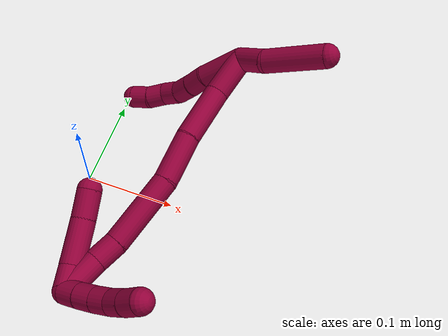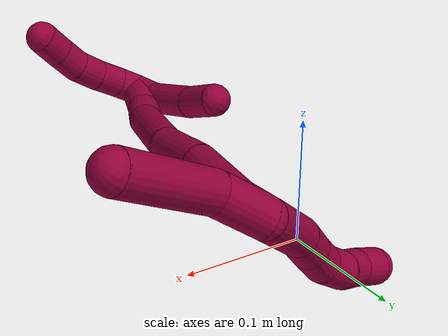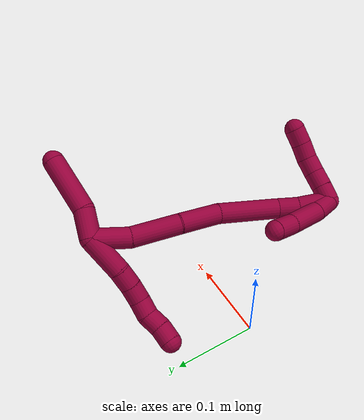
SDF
<sdf version="1.7">
 <world name="default">
  <model name="8">
   <static>0</static>
   <link name="8">
    <collision name="collision-cylinder-e_1_2_8">
     <pose>0.001947 -0.005397 -0.023139 2.91245 0.081759 0.683017</pose>
     <geometry><cylinder><radius>0.0125</radius><length>0.04768</length></cylinder></geometry>
     <surface>
      <friction><ode><mu>1.16</mu><mu2>1.16</mu2><slip1>0</slip1><slip2>0</slip2></ode></friction>
      <contact><ode><kp>1e+06</kp><kd>1</kd><max_vel>0</max_vel><min_depth>0.001</min_depth></ode></contact>
     </surface>
    </collision>
    <visual name="visual-cylinder-e_1_2_8">
     <pose>0.001947 -0.005397 -0.023139 2.91245 0.081759 0.683017</pose>
     <geometry><cylinder><radius>0.0125</radius><length>0.04768</length></cylinder></geometry>
     <material><ambient>0.584314 0 0.227451 1</ambient></material>
    </visual>
    <collision name="collision-cylinder-e_2_8_9">
     <pose>0.006574 -0.012587 -0.056457 2.96723 0.253731 1.94009</pose>
     <geometry><cylinder><radius>0.0125</radius><length>0.021354</length></cylinder></geometry>
     <surface>
      <friction><ode><mu>1.16</mu><mu2>1.16</mu2><slip1>0</slip1><slip2>0</slip2></ode></friction>
      <contact><ode><kp>1e+06</kp><kd>1</kd><max_vel>0</max_vel><min_depth>0.001</min_depth></ode></contact>
     </surface>
    </collision>
    <visual name="visual-cylinder-e_2_8_9">
     <pose>0.006574 -0.012587 -0.056457 2.96723 0.253731 1.94009</pose>
     <geometry><cylinder><radius>0.0125</radius><length>0.021354</length></cylinder></geometry>
     <material><ambient>0.584314 0 0.227451 1</ambient></material>
    </visual>
    <collision name="collision-cylinder-e_3_9_10">
     <pose>0.011852 -0.015225 -0.076754 3.05826 0.250481 2.50205</pose>
     <geometry><cylinder><radius>0.0125</radius><length>0.020961</length></cylinder></geometry>
     <surface>
      <friction><ode><mu>1.16</mu><mu2>1.16</mu2><slip1>0</slip1><slip2>0</slip2></ode></friction>
      <contact><ode><kp>1e+06</kp><kd>1</kd><max_vel>0</max_vel><min_depth>0.001</min_depth></ode></contact>
     </surface>
    </collision>
    <visual name="visual-cylinder-e_3_9_10">
     <pose>0.011852 -0.015225 -0.076754 3.05826 0.250481 2.50205</pose>
     <geometry><cylinder><radius>0.0125</radius><length>0.020961</length></cylinder></geometry>
     <material><ambient>0.584314 0 0.227451 1</ambient></material>
    </visual>
    <collision name="collision-cylinder-e_4_10_11">
     <pose>0.014164 -0.01557 -0.096857 -3.09156 -0.028587 1.0381</pose>
     <geometry><cylinder><radius>0.0125</radius><length>0.020002</length></cylinder></geometry>
     <surface>
      <friction><ode><mu>1.16</mu><mu2>1.16</mu2><slip1>0</slip1><slip2>0</slip2></ode></friction>
      <contact><ode><kp>1e+06</kp><kd>1</kd><max_vel>0</max_vel><min_depth>0.001</min_depth></ode></contact>
     </surface>
    </collision>
    <visual name="visual-cylinder-e_4_10_11">
     <pose>0.014164 -0.01557 -0.096857 -3.09156 -0.028587 1.0381</pose>
     <geometry><cylinder><radius>0.0125</radius><length>0.020002</length></cylinder></geometry>
     <material><ambient>0.584314 0 0.227451 1</ambient></material>
    </visual>
    <collision name="collision-cylinder-e_5_11_12">
     <pose>0.011834 -0.017448 -0.116338 2.89624 -0.205826 -1.39454</pose>
     <geometry><cylinder><radius>0.0125</radius><length>0.020003</length></cylinder></geometry>
     <surface>
      <friction><ode><mu>1.16</mu><mu2>1.16</mu2><slip1>0</slip1><slip2>0</slip2></ode></friction>
      <contact><ode><kp>1e+06</kp><kd>1</kd><max_vel>0</max_vel><min_depth>0.001</min_depth></ode></contact>
     </surface>
    </collision>
    <visual name="visual-cylinder-e_5_11_12">
     <pose>0.011834 -0.017448 -0.116338 2.89624 -0.205826 -1.39454</pose>
     <geometry><cylinder><radius>0.0125</radius><length>0.020003</length></cylinder></geometry>
     <material><ambient>0.584314 0 0.227451 1</ambient></material>
    </visual>
    <collision name="collision-cylinder-e_6_12_6">
     <pose>0.007013 -0.019822 -0.135441 -3.1411 -0.281451 3.13814</pose>
     <geometry><cylinder><radius>0.0125</radius><length>0.02</length></cylinder></geometry>
     <surface>
      <friction><ode><mu>1.16</mu><mu2>1.16</mu2><slip1>0</slip1><slip2>0</slip2></ode></friction>
      <contact><ode><kp>1e+06</kp><kd>1</kd><max_vel>0</max_vel><min_depth>0.001</min_depth></ode></contact>
     </surface>
    </collision>
    <visual name="visual-cylinder-e_6_12_6">
     <pose>0.007013 -0.019822 -0.135441 -3.1411 -0.281451 3.13814</pose>
     <geometry><cylinder><radius>0.0125</radius><length>0.02</length></cylinder></geometry>
     <material><ambient>0.584314 0 0.227451 1</ambient></material>
    </visual>
    <collision name="collision-cylinder-e_1_2_13">
     <pose>-0.00025 -0.005312 0.016267 0.315655 -0.014602 -0.002324</pose>
     <geometry><cylinder><radius>0.0125</radius><length>0.034228</length></cylinder></geometry>
     <surface>
      <friction><ode><mu>1.16</mu><mu2>1.16</mu2><slip1>0</slip1><slip2>0</slip2></ode></friction>
      <contact><ode><kp>1e+06</kp><kd>1</kd><max_vel>0</max_vel><min_depth>0.001</min_depth></ode></contact>
     </surface>
    </collision>
    <visual name="visual-cylinder-e_1_2_13">
     <pose>-0.00025 -0.005312 0.016267 0.315655 -0.014602 -0.002324</pose>
     <geometry><cylinder><radius>0.0125</radius><length>0.034228</length></cylinder></geometry>
     <material><ambient>0.584314 0 0.227451 1</ambient></material>
    </visual>
    <collision name="collision-cylinder-e_2_13_5">
     <pose>0.004214 -0.010948 0.065078 0.009948 0.143838 0.000717</pose>
     <geometry><cylinder><radius>0.0125</radius><length>0.065772</length></cylinder></geometry>
     <surface>
      <friction><ode><mu>1.16</mu><mu2>1.16</mu2><slip1>0</slip1><slip2>0</slip2></ode></friction>
      <contact><ode><kp>1e+06</kp><kd>1</kd><max_vel>0</max_vel><min_depth>0.001</min_depth></ode></contact>
     </surface>
    </collision>
    <visual name="visual-cylinder-e_2_13_5">
     <pose>0.004214 -0.010948 0.065078 0.009948 0.143838 0.000717</pose>
     <geometry><cylinder><radius>0.0125</radius><length>0.065772</length></cylinder></geometry>
     <material><ambient>0.584314 0 0.227451 1</ambient></material>
    </visual>
    <collision name="collision-cylinder-e_1_2_14">
     <pose>0.000802 -0.020298 -0.010049 2.03049 0.035399 0.057014</pose>
     <geometry><cylinder><radius>0.0125</radius><length>0.045326</length></cylinder></geometry>
     <surface>
      <friction><ode><mu>1.16</mu><mu2>1.16</mu2><slip1>0</slip1><slip2>0</slip2></ode></friction>
      <contact><ode><kp>1e+06</kp><kd>1</kd><max_vel>0</max_vel><min_depth>0.001</min_depth></ode></contact>
     </surface>
    </collision>
    <visual name="visual-cylinder-e_1_2_14">
     <pose>0.000802 -0.020298 -0.010049 2.03049 0.035399 0.057014</pose>
     <geometry><cylinder><radius>0.0125</radius><length>0.045326</length></cylinder></geometry>
     <material><ambient>0.584314 0 0.227451 1</ambient></material>
    </visual>
    <collision name="collision-cylinder-e_2_14_15">
     <pose>-0.000997 -0.069738 -0.027472 1.81864 -0.086331 -0.110853</pose>
     <geometry><cylinder><radius>0.0125</radius><length>0.060346</length></cylinder></geometry>
     <surface>
      <friction><ode><mu>1.16</mu><mu2>1.16</mu2><slip1>0</slip1><slip2>0</slip2></ode></friction>
      <contact><ode><kp>1e+06</kp><kd>1</kd><max_vel>0</max_vel><min_depth>0.001</min_depth></ode></contact>
     </surface>
    </collision>
    <visual name="visual-cylinder-e_2_14_15">
     <pose>-0.000997 -0.069738 -0.027472 1.81864 -0.086331 -0.110853</pose>
     <geometry><cylinder><radius>0.0125</radius><length>0.060346</length></cylinder></geometry>
     <material><ambient>0.584314 0 0.227451 1</ambient></material>
    </visual>
    <collision name="collision-cylinder-e_3_15_16">
     <pose>-0.002421 -0.123754 -0.041017 1.81397 0.045945 0.058729</pose>
     <geometry><cylinder><radius>0.0125</radius><length>0.05131</length></cylinder></geometry>
     <surface>
      <friction><ode><mu>1.16</mu><mu2>1.16</mu2><slip1>0</slip1><slip2>0</slip2></ode></friction>
      <contact><ode><kp>1e+06</kp><kd>1</kd><max_vel>0</max_vel><min_depth>0.001</min_depth></ode></contact>
     </surface>
    </collision>
    <visual name="visual-cylinder-e_3_15_16">
     <pose>-0.002421 -0.123754 -0.041017 1.81397 0.045945 0.058729</pose>
     <geometry><cylinder><radius>0.0125</radius><length>0.05131</length></cylinder></geometry>
     <material><ambient>0.584314 0 0.227451 1</ambient></material>
    </visual>
    <collision name="collision-cylinder-e_4_16_17">
     <pose>-0.003586 -0.183617 -0.062892 1.99268 -0.061034 -0.094254</pose>
     <geometry><cylinder><radius>0.0125</radius><length>0.076847</length></cylinder></geometry>
     <surface>
      <friction><ode><mu>1.16</mu><mu2>1.16</mu2><slip1>0</slip1><slip2>0</slip2></ode></friction>
      <contact><ode><kp>1e+06</kp><kd>1</kd><max_vel>0</max_vel><min_depth>0.001</min_depth></ode></contact>
     </surface>
    </collision>
    <visual name="visual-cylinder-e_4_16_17">
     <pose>-0.003586 -0.183617 -0.062892 1.99268 -0.061034 -0.094254</pose>
     <geometry><cylinder><radius>0.0125</radius><length>0.076847</length></cylinder></geometry>
     <material><ambient>0.584314 0 0.227451 1</ambient></material>
    </visual>
    <collision name="collision-cylinder-e_5_17_18">
     <pose>-0.008999 -0.229972 -0.084479 2.04842 -0.235371 -0.383868</pose>
     <geometry><cylinder><radius>0.0125</radius><length>0.026321</length></cylinder></geometry>
     <surface>
      <friction><ode><mu>1.16</mu><mu2>1.16</mu2><slip1>0</slip1><slip2>0</slip2></ode></friction>
      <contact><ode><kp>1e+06</kp><kd>1</kd><max_vel>0</max_vel><min_depth>0.001</min_depth></ode></contact>
     </surface>
    </collision>
    <visual name="visual-cylinder-e_5_17_18">
     <pose>-0.008999 -0.229972 -0.084479 2.04842 -0.235371 -0.383868</pose>
     <geometry><cylinder><radius>0.0125</radius><length>0.026321</length></cylinder></geometry>
     <material><ambient>0.584314 0 0.227451 1</ambient></material>
    </visual>
    <collision name="collision-cylinder-e_6_18_1">
     <pose>-0.017311 -0.259387 -0.096973 1.9219 -0.266278 -0.378784</pose>
     <geometry><cylinder><radius>0.0125</radius><length>0.03985</length></cylinder></geometry>
     <surface>
      <friction><ode><mu>1.16</mu><mu2>1.16</mu2><slip1>0</slip1><slip2>0</slip2></ode></friction>
      <contact><ode><kp>1e+06</kp><kd>1</kd><max_vel>0</max_vel><min_depth>0.001</min_depth></ode></contact>
     </surface>
    </collision>
    <visual name="visual-cylinder-e_6_18_1">
     <pose>-0.017311 -0.259387 -0.096973 1.9219 -0.266278 -0.378784</pose>
     <geometry><cylinder><radius>0.0125</radius><length>0.03985</length></cylinder></geometry>
     <material><ambient>0.584314 0 0.227451 1</ambient></material>
    </visual>
    <collision name="collision-cylinder-e_1_1_19">
     <pose>-0.021585 -0.279092 -0.09377 0.167102 0.097078 0.008136</pose>
     <geometry><cylinder><radius>0.0125</radius><length>0.02</length></cylinder></geometry>
     <surface>
      <friction><ode><mu>1.16</mu><mu2>1.16</mu2><slip1>0</slip1><slip2>0</slip2></ode></friction>
      <contact><ode><kp>1e+06</kp><kd>1</kd><max_vel>0</max_vel><min_depth>0.001</min_depth></ode></contact>
     </surface>
    </collision>
    <visual name="visual-cylinder-e_1_1_19">
     <pose>-0.021585 -0.279092 -0.09377 0.167102 0.097078 0.008136</pose>
     <geometry><cylinder><radius>0.0125</radius><length>0.02</length></cylinder></geometry>
     <material><ambient>0.584314 0 0.227451 1</ambient></material>
    </visual>
    <collision name="collision-cylinder-e_2_19_20">
     <pose>-0.019428 -0.281904 -0.074094 0.116749 0.119022 0.006964</pose>
     <geometry><cylinder><radius>0.0125</radius><length>0.02</length></cylinder></geometry>
     <surface>
      <friction><ode><mu>1.16</mu><mu2>1.16</mu2><slip1>0</slip1><slip2>0</slip2></ode></friction>
      <contact><ode><kp>1e+06</kp><kd>1</kd><max_vel>0</max_vel><min_depth>0.001</min_depth></ode></contact>
     </surface>
    </collision>
    <visual name="visual-cylinder-e_2_19_20">
     <pose>-0.019428 -0.281904 -0.074094 0.116749 0.119022 0.006964</pose>
     <geometry><cylinder><radius>0.0125</radius><length>0.02</length></cylinder></geometry>
     <material><ambient>0.584314 0 0.227451 1</ambient></material>
    </visual>
    <collision name="collision-cylinder-e_3_20_21">
     <pose>-0.017825 -0.283979 -0.054284 0.091989 0.041569 0.001914</pose>
     <geometry><cylinder><radius>0.0125</radius><length>0.02</length></cylinder></geometry>
     <surface>
      <friction><ode><mu>1.16</mu><mu2>1.16</mu2><slip1>0</slip1><slip2>0</slip2></ode></friction>
      <contact><ode><kp>1e+06</kp><kd>1</kd><max_vel>0</max_vel><min_depth>0.001</min_depth></ode></contact>
     </surface>
    </collision>
    <visual name="visual-cylinder-e_3_20_21">
     <pose>-0.017825 -0.283979 -0.054284 0.091989 0.041569 0.001914</pose>
     <geometry><cylinder><radius>0.0125</radius><length>0.02</length></cylinder></geometry>
     <material><ambient>0.584314 0 0.227451 1</ambient></material>
    </visual>
    <collision name="collision-cylinder-e_4_21_22">
     <pose>-0.019211 -0.285704 -0.034531 0.082251 -0.181109 -0.007473</pose>
     <geometry><cylinder><radius>0.0125</radius><length>0.02</length></cylinder></geometry>
     <surface>
      <friction><ode><mu>1.16</mu><mu2>1.16</mu2><slip1>0</slip1><slip2>0</slip2></ode></friction>
      <contact><ode><kp>1e+06</kp><kd>1</kd><max_vel>0</max_vel><min_depth>0.001</min_depth></ode></contact>
     </surface>
    </collision>
    <visual name="visual-cylinder-e_4_21_22">
     <pose>-0.019211 -0.285704 -0.034531 0.082251 -0.181109 -0.007473</pose>
     <geometry><cylinder><radius>0.0125</radius><length>0.02</length></cylinder></geometry>
     <material><ambient>0.584314 0 0.227451 1</ambient></material>
    </visual>
    <collision name="collision-cylinder-e_5_22_4">
     <pose>-0.022966 -0.286447 -0.014921 -0.0067 -0.19664 0.000661</pose>
     <geometry><cylinder><radius>0.0125</radius><length>0.02</length></cylinder></geometry>
     <surface>
      <friction><ode><mu>1.16</mu><mu2>1.16</mu2><slip1>0</slip1><slip2>0</slip2></ode></friction>
      <contact><ode><kp>1e+06</kp><kd>1</kd><max_vel>0</max_vel><min_depth>0.001</min_depth></ode></contact>
     </surface>
    </collision>
    <visual name="visual-cylinder-e_5_22_4">
     <pose>-0.022966 -0.286447 -0.014921 -0.0067 -0.19664 0.000661</pose>
     <geometry><cylinder><radius>0.0125</radius><length>0.02</length></cylinder></geometry>
     <material><ambient>0.584314 0 0.227451 1</ambient></material>
    </visual>
    <collision name="collision-cylinder-e_1_1_23">
     <pose>-0.023154 -0.265625 -0.104917 -1.68317 -0.050394 0.056397</pose>
     <geometry><cylinder><radius>0.0125</radius><length>0.023803</length></cylinder></geometry>
     <surface>
      <friction><ode><mu>1.16</mu><mu2>1.16</mu2><slip1>0</slip1><slip2>0</slip2></ode></friction>
      <contact><ode><kp>1e+06</kp><kd>1</kd><max_vel>0</max_vel><min_depth>0.001</min_depth></ode></contact>
     </surface>
    </collision>
    <visual name="visual-cylinder-e_1_1_23">
     <pose>-0.023154 -0.265625 -0.104917 -1.68317 -0.050394 0.056397</pose>
     <geometry><cylinder><radius>0.0125</radius><length>0.023803</length></cylinder></geometry>
     <material><ambient>0.584314 0 0.227451 1</ambient></material>
    </visual>
    <collision name="collision-cylinder-e_2_23_24">
     <pose>-0.029234 -0.231059 -0.104305 -1.48551 -0.235546 0.216424</pose>
     <geometry><cylinder><radius>0.0125</radius><length>0.046973</length></cylinder></geometry>
     <surface>
      <friction><ode><mu>1.16</mu><mu2>1.16</mu2><slip1>0</slip1><slip2>0</slip2></ode></friction>
      <contact><ode><kp>1e+06</kp><kd>1</kd><max_vel>0</max_vel><min_depth>0.001</min_depth></ode></contact>
     </surface>
    </collision>
    <visual name="visual-cylinder-e_2_23_24">
     <pose>-0.029234 -0.231059 -0.104305 -1.48551 -0.235546 0.216424</pose>
     <geometry><cylinder><radius>0.0125</radius><length>0.046973</length></cylinder></geometry>
     <material><ambient>0.584314 0 0.227451 1</ambient></material>
    </visual>
    <collision name="collision-cylinder-e_3_24_3">
     <pose>-0.039587 -0.194685 -0.100284 -1.41953 -0.339903 0.292752</pose>
     <geometry><cylinder><radius>0.0125</radius><length>0.029224</length></cylinder></geometry>
     <surface>
      <friction><ode><mu>1.16</mu><mu2>1.16</mu2><slip1>0</slip1><slip2>0</slip2></ode></friction>
      <contact><ode><kp>1e+06</kp><kd>1</kd><max_vel>0</max_vel><min_depth>0.001</min_depth></ode></contact>
     </surface>
    </collision>
    <visual name="visual-cylinder-e_3_24_3">
     <pose>-0.039587 -0.194685 -0.100284 -1.41953 -0.339903 0.292752</pose>
     <geometry><cylinder><radius>0.0125</radius><length>0.029224</length></cylinder></geometry>
     <material><ambient>0.584314 0 0.227451 1</ambient></material>
    </visual>
    <collision name="collision-sphere-3">
     <pose>-0.044458 -0.181067 -0.098208 0 -0 0</pose>
     <geometry><sphere><radius>0.0125</radius></sphere></geometry>
     <surface>
      <friction><ode><mu>1.16</mu><mu2>1.16</mu2><slip1>0</slip1><slip2>0</slip2></ode></friction>
      <contact><ode><kp>1e+06</kp><kd>1</kd><max_vel>0</max_vel><min_depth>0.001</min_depth></ode></contact>
     </surface>
    </collision>
    <visual name="visual-sphere-3">
     <pose>-0.044458 -0.181067 -0.098208 0 -0 0</pose>
     <geometry><sphere><radius>0.0125</radius></sphere></geometry>
     <material><ambient>0.584314 0 0.227451 1</ambient></material>
    </visual>
    <collision name="collision-sphere-24">
     <pose>-0.034715 -0.208304 -0.10236 0 -0 0</pose>
     <geometry><sphere><radius>0.0125</radius></sphere></geometry>
     <surface>
      <friction><ode><mu>1.16</mu><mu2>1.16</mu2><slip1>0</slip1><slip2>0</slip2></ode></friction>
      <contact><ode><kp>1e+06</kp><kd>1</kd><max_vel>0</max_vel><min_depth>0.001</min_depth></ode></contact>
     </surface>
    </collision>
    <visual name="visual-sphere-24">
     <pose>-0.034715 -0.208304 -0.10236 0 -0 0</pose>
     <geometry><sphere><radius>0.0125</radius></sphere></geometry>
     <material><ambient>0.584314 0 0.227451 1</ambient></material>
    </visual>
    <collision name="collision-sphere-23">
     <pose>-0.023753 -0.253814 -0.10625 0 -0 0</pose>
     <geometry><sphere><radius>0.0125</radius></sphere></geometry>
     <surface>
      <friction><ode><mu>1.16</mu><mu2>1.16</mu2><slip1>0</slip1><slip2>0</slip2></ode></friction>
      <contact><ode><kp>1e+06</kp><kd>1</kd><max_vel>0</max_vel><min_depth>0.001</min_depth></ode></contact>
     </surface>
    </collision>
    <visual name="visual-sphere-23">
     <pose>-0.023753 -0.253814 -0.10625 0 -0 0</pose>
     <geometry><sphere><radius>0.0125</radius></sphere></geometry>
     <material><ambient>0.584314 0 0.227451 1</ambient></material>
    </visual>
    <collision name="collision-sphere-4">
     <pose>-0.02492 -0.286381 -0.005114 0 -0 0</pose>
     <geometry><sphere><radius>0.0125</radius></sphere></geometry>
     <surface>
      <friction><ode><mu>1.16</mu><mu2>1.16</mu2><slip1>0</slip1><slip2>0</slip2></ode></friction>
      <contact><ode><kp>1e+06</kp><kd>1</kd><max_vel>0</max_vel><min_depth>0.001</min_depth></ode></contact>
     </surface>
    </collision>
    <visual name="visual-sphere-4">
     <pose>-0.02492 -0.286381 -0.005114 0 -0 0</pose>
     <geometry><sphere><radius>0.0125</radius></sphere></geometry>
     <material><ambient>0.584314 0 0.227451 1</ambient></material>
    </visual>
    <collision name="collision-sphere-22">
     <pose>-0.021012 -0.286513 -0.024728 0 -0 0</pose>
     <geometry><sphere><radius>0.0125</radius></sphere></geometry>
     <surface>
      <friction><ode><mu>1.16</mu><mu2>1.16</mu2><slip1>0</slip1><slip2>0</slip2></ode></friction>
      <contact><ode><kp>1e+06</kp><kd>1</kd><max_vel>0</max_vel><min_depth>0.001</min_depth></ode></contact>
     </surface>
    </collision>
    <visual name="visual-sphere-22">
     <pose>-0.021012 -0.286513 -0.024728 0 -0 0</pose>
     <geometry><sphere><radius>0.0125</radius></sphere></geometry>
     <material><ambient>0.584314 0 0.227451 1</ambient></material>
    </visual>
    <collision name="collision-sphere-21">
     <pose>-0.01741 -0.284896 -0.044334 0 -0 0</pose>
     <geometry><sphere><radius>0.0125</radius></sphere></geometry>
     <surface>
      <friction><ode><mu>1.16</mu><mu2>1.16</mu2><slip1>0</slip1><slip2>0</slip2></ode></friction>
      <contact><ode><kp>1e+06</kp><kd>1</kd><max_vel>0</max_vel><min_depth>0.001</min_depth></ode></contact>
     </surface>
    </collision>
    <visual name="visual-sphere-21">
     <pose>-0.01741 -0.284896 -0.044334 0 -0 0</pose>
     <geometry><sphere><radius>0.0125</radius></sphere></geometry>
     <material><ambient>0.584314 0 0.227451 1</ambient></material>
    </visual>
    <collision name="collision-sphere-20">
     <pose>-0.018241 -0.283061 -0.064233 0 -0 0</pose>
     <geometry><sphere><radius>0.0125</radius></sphere></geometry>
     <surface>
      <friction><ode><mu>1.16</mu><mu2>1.16</mu2><slip1>0</slip1><slip2>0</slip2></ode></friction>
      <contact><ode><kp>1e+06</kp><kd>1</kd><max_vel>0</max_vel><min_depth>0.001</min_depth></ode></contact>
     </surface>
    </collision>
    <visual name="visual-sphere-20">
     <pose>-0.018241 -0.283061 -0.064233 0 -0 0</pose>
     <geometry><sphere><radius>0.0125</radius></sphere></geometry>
     <material><ambient>0.584314 0 0.227451 1</ambient></material>
    </visual>
    <collision name="collision-sphere-12">
     <pose>0.00979 -0.019827 -0.125835 0 -0 0</pose>
     <geometry><sphere><radius>0.0125</radius></sphere></geometry>
     <surface>
      <friction><ode><mu>1.16</mu><mu2>1.16</mu2><slip1>0</slip1><slip2>0</slip2></ode></friction>
      <contact><ode><kp>1e+06</kp><kd>1</kd><max_vel>0</max_vel><min_depth>0.001</min_depth></ode></contact>
     </surface>
    </collision>
    <visual name="visual-sphere-12">
     <pose>0.00979 -0.019827 -0.125835 0 -0 0</pose>
     <geometry><sphere><radius>0.0125</radius></sphere></geometry>
     <material><ambient>0.584314 0 0.227451 1</ambient></material>
    </visual>
    <collision name="collision-sphere-11">
     <pose>0.013878 -0.01507 -0.106841 0 -0 0</pose>
     <geometry><sphere><radius>0.0125</radius></sphere></geometry>
     <surface>
      <friction><ode><mu>1.16</mu><mu2>1.16</mu2><slip1>0</slip1><slip2>0</slip2></ode></friction>
      <contact><ode><kp>1e+06</kp><kd>1</kd><max_vel>0</max_vel><min_depth>0.001</min_depth></ode></contact>
     </surface>
    </collision>
    <visual name="visual-sphere-11">
     <pose>0.013878 -0.01507 -0.106841 0 -0 0</pose>
     <geometry><sphere><radius>0.0125</radius></sphere></geometry>
     <material><ambient>0.584314 0 0.227451 1</ambient></material>
    </visual>
    <collision name="collision-sphere-10">
     <pose>0.01445 -0.01607 -0.086872 0 -0 0</pose>
     <geometry><sphere><radius>0.0125</radius></sphere></geometry>
     <surface>
      <friction><ode><mu>1.16</mu><mu2>1.16</mu2><slip1>0</slip1><slip2>0</slip2></ode></friction>
      <contact><ode><kp>1e+06</kp><kd>1</kd><max_vel>0</max_vel><min_depth>0.001</min_depth></ode></contact>
     </surface>
    </collision>
    <visual name="visual-sphere-10">
     <pose>0.01445 -0.01607 -0.086872 0 -0 0</pose>
     <geometry><sphere><radius>0.0125</radius></sphere></geometry>
     <material><ambient>0.584314 0 0.227451 1</ambient></material>
    </visual>
    <collision name="collision-sphere-9">
     <pose>0.009254 -0.01438 -0.066636 0 -0 0</pose>
     <geometry><sphere><radius>0.0125</radius></sphere></geometry>
     <surface>
      <friction><ode><mu>1.16</mu><mu2>1.16</mu2><slip1>0</slip1><slip2>0</slip2></ode></friction>
      <contact><ode><kp>1e+06</kp><kd>1</kd><max_vel>0</max_vel><min_depth>0.001</min_depth></ode></contact>
     </surface>
    </collision>
    <visual name="visual-sphere-9">
     <pose>0.009254 -0.01438 -0.066636 0 -0 0</pose>
     <geometry><sphere><radius>0.0125</radius></sphere></geometry>
     <material><ambient>0.584314 0 0.227451 1</ambient></material>
    </visual>
    <collision name="collision-sphere-2">
     <geometry><sphere><radius>0.0125</radius></sphere></geometry>
     <surface>
      <friction><ode><mu>1.16</mu><mu2>1.16</mu2><slip1>0</slip1><slip2>0</slip2></ode></friction>
      <contact><ode><kp>1e+06</kp><kd>1</kd><max_vel>0</max_vel><min_depth>0.001</min_depth></ode></contact>
     </surface>
    </collision>
    <visual name="visual-sphere-2">
     <geometry><sphere><radius>0.0125</radius></sphere></geometry>
     <material><ambient>0.584314 0 0.227451 1</ambient></material>
    </visual>
    <collision name="collision-sphere-19">
     <pose>-0.020616 -0.280748 -0.083956 0 -0 0</pose>
     <geometry><sphere><radius>0.0125</radius></sphere></geometry>
     <surface>
      <friction><ode><mu>1.16</mu><mu2>1.16</mu2><slip1>0</slip1><slip2>0</slip2></ode></friction>
      <contact><ode><kp>1e+06</kp><kd>1</kd><max_vel>0</max_vel><min_depth>0.001</min_depth></ode></contact>
     </surface>
    </collision>
    <visual name="visual-sphere-19">
     <pose>-0.020616 -0.280748 -0.083956 0 -0 0</pose>
     <geometry><sphere><radius>0.0125</radius></sphere></geometry>
     <material><ambient>0.584314 0 0.227451 1</ambient></material>
    </visual>
    <collision name="collision-sphere-8">
     <pose>0.003894 -0.010794 -0.046279 0 -0 0</pose>
     <geometry><sphere><radius>0.0125</radius></sphere></geometry>
     <surface>
      <friction><ode><mu>1.16</mu><mu2>1.16</mu2><slip1>0</slip1><slip2>0</slip2></ode></friction>
      <contact><ode><kp>1e+06</kp><kd>1</kd><max_vel>0</max_vel><min_depth>0.001</min_depth></ode></contact>
     </surface>
    </collision>
    <visual name="visual-sphere-8">
     <pose>0.003894 -0.010794 -0.046279 0 -0 0</pose>
     <geometry><sphere><radius>0.0125</radius></sphere></geometry>
     <material><ambient>0.584314 0 0.227451 1</ambient></material>
    </visual>
    <collision name="collision-sphere-6">
     <pose>0.004235 -0.019817 -0.145048 0 -0 0</pose>
     <geometry><sphere><radius>0.0125</radius></sphere></geometry>
     <surface>
      <friction><ode><mu>1.16</mu><mu2>1.16</mu2><slip1>0</slip1><slip2>0</slip2></ode></friction>
      <contact><ode><kp>1e+06</kp><kd>1</kd><max_vel>0</max_vel><min_depth>0.001</min_depth></ode></contact>
     </surface>
    </collision>
    <visual name="visual-sphere-6">
     <pose>0.004235 -0.019817 -0.145048 0 -0 0</pose>
     <geometry><sphere><radius>0.0125</radius></sphere></geometry>
     <material><ambient>0.584314 0 0.227451 1</ambient></material>
    </visual>
    <collision name="collision-sphere-13">
     <pose>-0.0005 -0.010625 0.032533 0 -0 0</pose>
     <geometry><sphere><radius>0.0125</radius></sphere></geometry>
     <surface>
      <friction><ode><mu>1.16</mu><mu2>1.16</mu2><slip1>0</slip1><slip2>0</slip2></ode></friction>
      <contact><ode><kp>1e+06</kp><kd>1</kd><max_vel>0</max_vel><min_depth>0.001</min_depth></ode></contact>
     </surface>
    </collision>
    <visual name="visual-sphere-13">
     <pose>-0.0005 -0.010625 0.032533 0 -0 0</pose>
     <geometry><sphere><radius>0.0125</radius></sphere></geometry>
     <material><ambient>0.584314 0 0.227451 1</ambient></material>
    </visual>
    <collision name="collision-sphere-5">
     <pose>0.008928 -0.011272 0.097623 0 -0 0</pose>
     <geometry><sphere><radius>0.0125</radius></sphere></geometry>
     <surface>
      <friction><ode><mu>1.16</mu><mu2>1.16</mu2><slip1>0</slip1><slip2>0</slip2></ode></friction>
      <contact><ode><kp>1e+06</kp><kd>1</kd><max_vel>0</max_vel><min_depth>0.001</min_depth></ode></contact>
     </surface>
    </collision>
    <visual name="visual-sphere-5">
     <pose>0.008928 -0.011272 0.097623 0 -0 0</pose>
     <geometry><sphere><radius>0.0125</radius></sphere></geometry>
     <material><ambient>0.584314 0 0.227451 1</ambient></material>
    </visual>
    <collision name="collision-sphere-14">
     <pose>0.001604 -0.040596 -0.020097 0 -0 0</pose>
     <geometry><sphere><radius>0.0125</radius></sphere></geometry>
     <surface>
      <friction><ode><mu>1.16</mu><mu2>1.16</mu2><slip1>0</slip1><slip2>0</slip2></ode></friction>
      <contact><ode><kp>1e+06</kp><kd>1</kd><max_vel>0</max_vel><min_depth>0.001</min_depth></ode></contact>
     </surface>
    </collision>
    <visual name="visual-sphere-14">
     <pose>0.001604 -0.040596 -0.020097 0 -0 0</pose>
     <geometry><sphere><radius>0.0125</radius></sphere></geometry>
     <material><ambient>0.584314 0 0.227451 1</ambient></material>
    </visual>
    <collision name="collision-sphere-15">
     <pose>-0.003599 -0.09888 -0.034846 0 -0 0</pose>
     <geometry><sphere><radius>0.0125</radius></sphere></geometry>
     <surface>
      <friction><ode><mu>1.16</mu><mu2>1.16</mu2><slip1>0</slip1><slip2>0</slip2></ode></friction>
      <contact><ode><kp>1e+06</kp><kd>1</kd><max_vel>0</max_vel><min_depth>0.001</min_depth></ode></contact>
     </surface>
    </collision>
    <visual name="visual-sphere-15">
     <pose>-0.003599 -0.09888 -0.034846 0 -0 0</pose>
     <geometry><sphere><radius>0.0125</radius></sphere></geometry>
     <material><ambient>0.584314 0 0.227451 1</ambient></material>
    </visual>
    <collision name="collision-sphere-16">
     <pose>-0.001242 -0.148628 -0.047188 0 -0 0</pose>
     <geometry><sphere><radius>0.0125</radius></sphere></geometry>
     <surface>
      <friction><ode><mu>1.16</mu><mu2>1.16</mu2><slip1>0</slip1><slip2>0</slip2></ode></friction>
      <contact><ode><kp>1e+06</kp><kd>1</kd><max_vel>0</max_vel><min_depth>0.001</min_depth></ode></contact>
     </surface>
    </collision>
    <visual name="visual-sphere-16">
     <pose>-0.001242 -0.148628 -0.047188 0 -0 0</pose>
     <geometry><sphere><radius>0.0125</radius></sphere></geometry>
     <material><ambient>0.584314 0 0.227451 1</ambient></material>
    </visual>
    <collision name="collision-sphere-17">
     <pose>-0.00593 -0.218606 -0.078597 0 -0 0</pose>
     <geometry><sphere><radius>0.0125</radius></sphere></geometry>
     <surface>
      <friction><ode><mu>1.16</mu><mu2>1.16</mu2><slip1>0</slip1><slip2>0</slip2></ode></friction>
      <contact><ode><kp>1e+06</kp><kd>1</kd><max_vel>0</max_vel><min_depth>0.001</min_depth></ode></contact>
     </surface>
    </collision>
    <visual name="visual-sphere-17">
     <pose>-0.00593 -0.218606 -0.078597 0 -0 0</pose>
     <geometry><sphere><radius>0.0125</radius></sphere></geometry>
     <material><ambient>0.584314 0 0.227451 1</ambient></material>
    </visual>
    <collision name="collision-sphere-18">
     <pose>-0.012068 -0.241337 -0.090362 0 -0 0</pose>
     <geometry><sphere><radius>0.0125</radius></sphere></geometry>
     <surface>
      <friction><ode><mu>1.16</mu><mu2>1.16</mu2><slip1>0</slip1><slip2>0</slip2></ode></friction>
      <contact><ode><kp>1e+06</kp><kd>1</kd><max_vel>0</max_vel><min_depth>0.001</min_depth></ode></contact>
     </surface>
    </collision>
    <visual name="visual-sphere-18">
     <pose>-0.012068 -0.241337 -0.090362 0 -0 0</pose>
     <geometry><sphere><radius>0.0125</radius></sphere></geometry>
     <material><ambient>0.584314 0 0.227451 1</ambient></material>
    </visual>
    <collision name="collision-sphere-1">
     <pose>-0.022554 -0.277437 -0.103585 0 -0 0</pose>
     <geometry><sphere><radius>0.0125</radius></sphere></geometry>
     <surface>
      <friction><ode><mu>1.16</mu><mu2>1.16</mu2><slip1>0</slip1><slip2>0</slip2></ode></friction>
      <contact><ode><kp>1e+06</kp><kd>1</kd><max_vel>0</max_vel><min_depth>0.001</min_depth></ode></contact>
     </surface>
    </collision>
    <visual name="visual-sphere-1">
     <pose>-0.022554 -0.277437 -0.103585 0 -0 0</pose>
     <geometry><sphere><radius>0.0125</radius></sphere></geometry>
     <material><ambient>0.584314 0 0.227451 1</ambient></material>
    </visual>
    <inertial>
     <pose>-0.006722 -0.127987 -0.04927 0 -0 0</pose>
     <mass>0.75</mass>
     <inertia><ixx>0.000153</ixx><ixy>0</ixy><ixz>0</ixz><iyy>-1e-05</iyy><iyz>0</iyz><izz>7.8e-05</izz></inertia>
    </inertial>
   </link>
   <pose>0.130745 0.133952 0.119071 -0.058534 0.970784 0.042008</pose>
  </model>
 </world>
</sdf>
